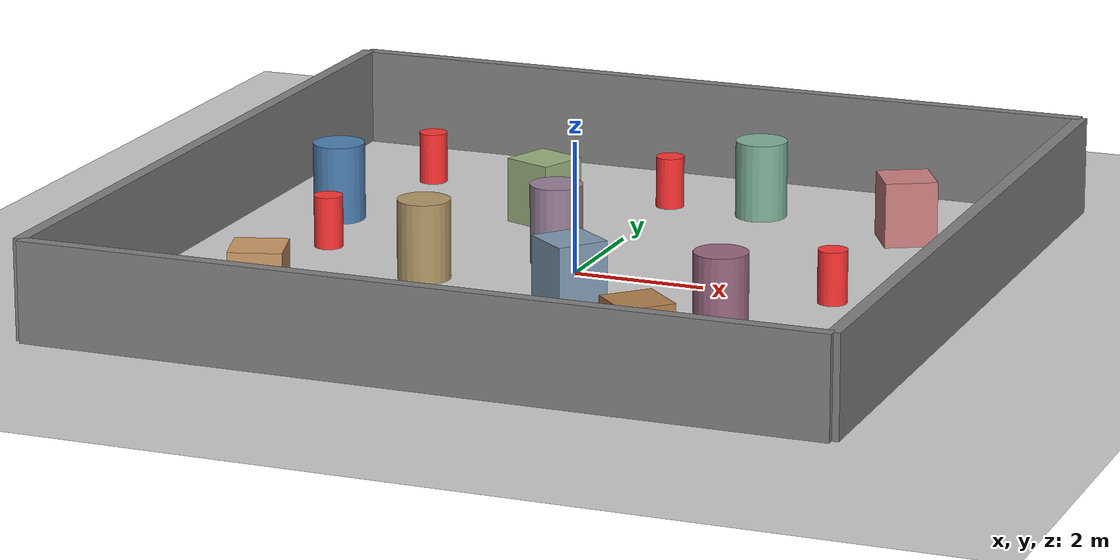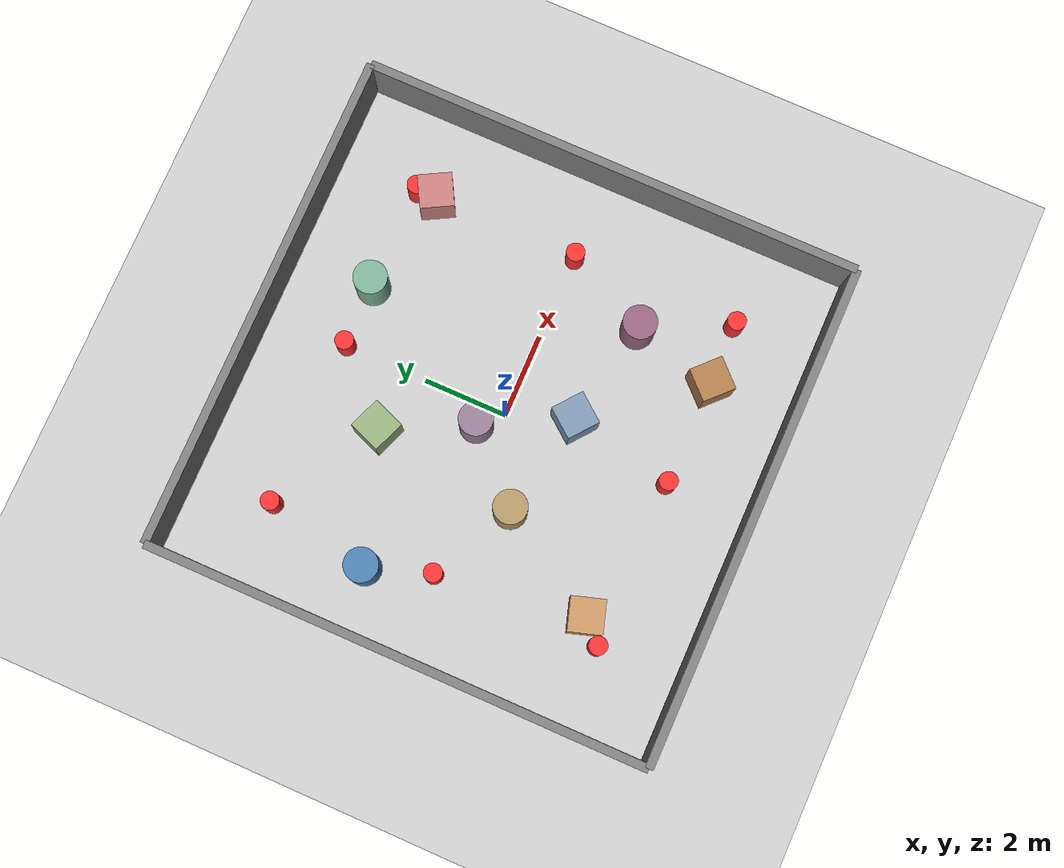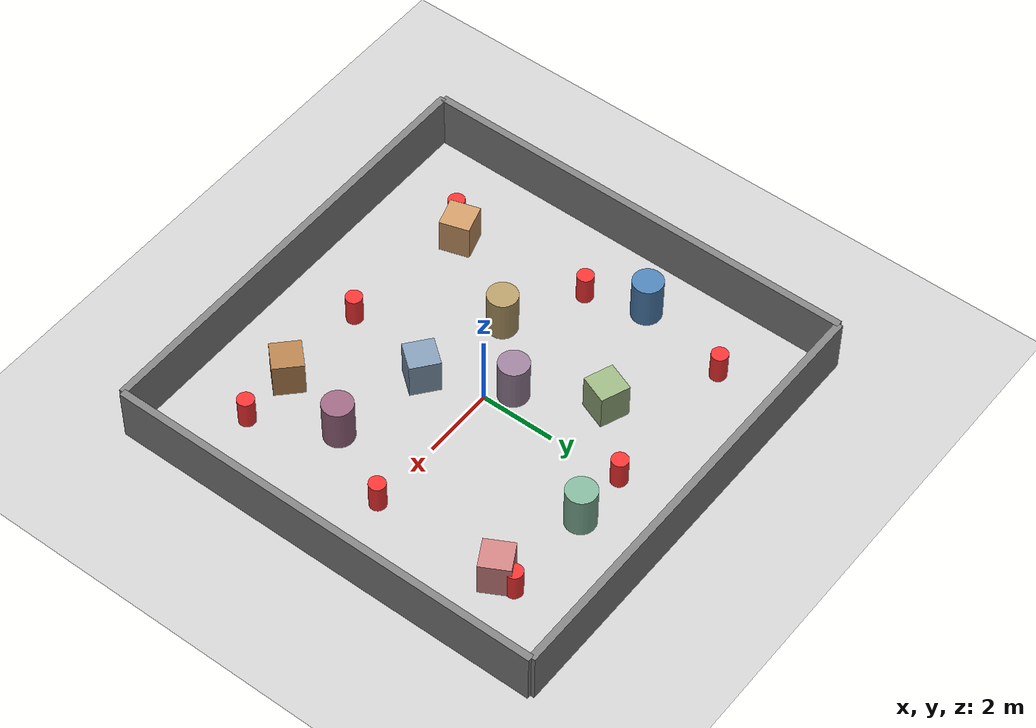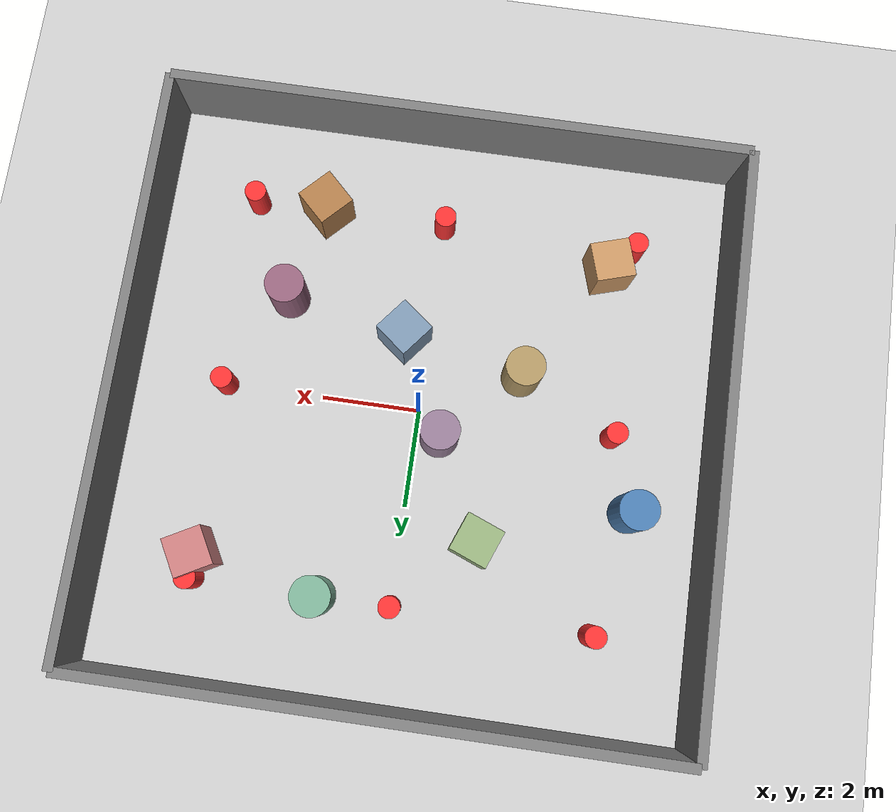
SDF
<?xml version="1.0" ?>
<sdf version="1.6">
<world name="warehouse_random">
  <plugin name='gazebo_ros_state' filename='libgazebo_ros_state.so'>
    <ros>
      <argument>model_states:=model_states_demo</argument>
    </ros>
    <update_rate>1.0</update_rate>
  </plugin>

  <include>
    <uri>model://sun</uri>
  </include>
  <include>
    <uri>model://ground_plane</uri>
  </include>

  <!-- Boundary walls: 12m x 12m warehouse (±6m) -->
  <model name="b_north">
    <static>true</static>
    <pose>0.0 6.0 0.75 0 0 0</pose>
    <link name="link">
      <collision name="collision"><geometry><box><size>12.0 0.2 1.5</size></box></geometry></collision>
      <visual name="visual">
        <geometry><box><size>12.0 0.2 1.5</size></box></geometry>
        <material><ambient>0.5 0.5 0.5 1</ambient></material>
      </visual>
    </link>
  </model>

  <model name="b_south">
    <static>true</static>
    <pose>0.0 -6.0 0.75 0 0 0</pose>
    <link name="link">
      <collision name="collision"><geometry><box><size>12.0 0.2 1.5</size></box></geometry></collision>
      <visual name="visual">
        <geometry><box><size>12.0 0.2 1.5</size></box></geometry>
        <material><ambient>0.5 0.5 0.5 1</ambient></material>
      </visual>
    </link>
  </model>

  <model name="b_east">
    <static>true</static>
    <pose>6.0 0.0 0.75 0 0 0</pose>
    <link name="link">
      <collision name="collision"><geometry><box><size>0.2 12.0 1.5</size></box></geometry></collision>
      <visual name="visual">
        <geometry><box><size>0.2 12.0 1.5</size></box></geometry>
        <material><ambient>0.5 0.5 0.5 1</ambient></material>
      </visual>
    </link>
  </model>

  <model name="b_west">
    <static>true</static>
    <pose>-6.0 0.0 0.75 0 0 0</pose>
    <link name="link">
      <collision name="collision"><geometry><box><size>0.2 12.0 1.5</size></box></geometry></collision>
      <visual name="visual">
        <geometry><box><size>0.2 12.0 1.5</size></box></geometry>
        <material><ambient>0.5 0.5 0.5 1</ambient></material>
      </visual>
    </link>
  </model>

  <!-- Random static obstacles: boxes and cylinders simulating warehouse items -->
  <!-- Layout: 随机分布 10 个静态障碍物，留出足够导航空间 -->

  <!-- Box obstacles (货箱) - 0.8m x 0.8m x 1.0m -->
  <model name="static_box_0">
    <static>true</static>
    <pose>-3.5 -3.5 0.5 0 0 0.3</pose>
    <link name="link">
      <collision name="collision"><geometry><box><size>0.8 0.8 1.0</size></box></geometry></collision>
      <visual name="visual">
        <geometry><box><size>0.8 0.8 1.0</size></box></geometry>
        <material><ambient>0.8 0.6 0.4 1</ambient></material>
      </visual>
    </link>
  </model>

  <model name="static_box_1">
    <static>true</static>
    <pose>2.5 -4.0 0.5 0 0 0.8</pose>
    <link name="link">
      <collision name="collision"><geometry><box><size>0.8 0.8 1.0</size></box></geometry></collision>
      <visual name="visual">
        <geometry><box><size>0.8 0.8 1.0</size></box></geometry>
        <material><ambient>0.7 0.5 0.3 1</ambient></material>
      </visual>
    </link>
  </model>

  <model name="static_box_2">
    <static>true</static>
    <pose>-1.5 2.5 0.5 0 0 1.2</pose>
    <link name="link">
      <collision name="collision"><geometry><box><size>0.8 0.8 1.0</size></box></geometry></collision>
      <visual name="visual">
        <geometry><box><size>0.8 0.8 1.0</size></box></geometry>
        <material><ambient>0.6 0.7 0.5 1</ambient></material>
      </visual>
    </link>
  </model>

  <model name="static_box_3">
    <static>true</static>
    <pose>4.0 3.5 0.5 0 0 0.5</pose>
    <link name="link">
      <collision name="collision"><geometry><box><size>0.8 0.8 1.0</size></box></geometry></collision>
      <visual name="visual">
        <geometry><box><size>0.8 0.8 1.0</size></box></geometry>
        <material><ambient>0.8 0.5 0.5 1</ambient></material>
      </visual>
    </link>
  </model>

  <model name="static_box_4">
    <static>true</static>
    <pose>0.5 -1.5 0.5 0 0 0.9</pose>
    <link name="link">
      <collision name="collision"><geometry><box><size>0.8 0.8 1.0</size></box></geometry></collision>
      <visual name="visual">
        <geometry><box><size>0.8 0.8 1.0</size></box></geometry>
        <material><ambient>0.5 0.6 0.7 1</ambient></material>
      </visual>
    </link>
  </model>

  <!-- Cylinder obstacles (圆柱货物) - radius 0.4m, height 1.2m -->
  <model name="static_cyl_0">
    <static>true</static>
    <pose>-4.5 1.5 0.6 0 0 0</pose>
    <link name="link">
      <collision name="collision"><geometry><cylinder><radius>0.4</radius><length>1.2</length></cylinder></geometry></collision>
      <visual name="visual">
        <geometry><cylinder><radius>0.4</radius><length>1.2</length></cylinder></geometry>
        <material><ambient>0.3 0.5 0.7 1</ambient></material>
      </visual>
    </link>
  </model>

  <model name="static_cyl_1">
    <static>true</static>
    <pose>3.0 -2.0 0.6 0 0 0</pose>
    <link name="link">
      <collision name="collision"><geometry><cylinder><radius>0.4</radius><length>1.2</length></cylinder></geometry></collision>
      <visual name="visual">
        <geometry><cylinder><radius>0.4</radius><length>1.2</length></cylinder></geometry>
        <material><ambient>0.6 0.4 0.5 1</ambient></material>
      </visual>
    </link>
  </model>

  <model name="static_cyl_2">
    <static>true</static>
    <pose>-2.0 -1.0 0.6 0 0 0</pose>
    <link name="link">
      <collision name="collision"><geometry><cylinder><radius>0.4</radius><length>1.2</length></cylinder></geometry></collision>
      <visual name="visual">
        <geometry><cylinder><radius>0.4</radius><length>1.2</length></cylinder></geometry>
        <material><ambient>0.7 0.6 0.4 1</ambient></material>
      </visual>
    </link>
  </model>

  <model name="static_cyl_3">
    <static>true</static>
    <pose>1.5 4.0 0.6 0 0 0</pose>
    <link name="link">
      <collision name="collision"><geometry><cylinder><radius>0.4</radius><length>1.2</length></cylinder></geometry></collision>
      <visual name="visual">
        <geometry><cylinder><radius>0.4</radius><length>1.2</length></cylinder></geometry>
        <material><ambient>0.5 0.7 0.6 1</ambient></material>
      </visual>
    </link>
  </model>

  <model name="static_cyl_4">
    <static>true</static>
    <pose>-0.5 0.5 0.6 0 0 0</pose>
    <link name="link">
      <collision name="collision"><geometry><cylinder><radius>0.4</radius><length>1.2</length></cylinder></geometry></collision>
      <visual name="visual">
        <geometry><cylinder><radius>0.4</radius><length>1.2</length></cylinder></geometry>
        <material><ambient>0.6 0.5 0.6 1</ambient></material>
      </visual>
    </link>
  </model>

  <!-- Dynamic obstacles (8 cylinders, moved by obstacle_mover node) -->
  <model name="dyn_obs_0">
    <static>true</static>
    <pose>-4.0 -4.0 0.4 0 0 0</pose>
    <link name="link">
      <collision name="collision"><geometry><cylinder><radius>0.22</radius><length>0.8</length></cylinder></geometry></collision>
      <visual name="visual">
        <geometry><cylinder><radius>0.22</radius><length>0.8</length></cylinder></geometry>
        <material><ambient>1.0 0.2 0.2 1</ambient></material>
      </visual>
    </link>
  </model>

  <model name="dyn_obs_1">
    <static>true</static>
    <pose>-4.0 4.0 0.4 0 0 0</pose>
    <link name="link">
      <collision name="collision"><geometry><cylinder><radius>0.22</radius><length>0.8</length></cylinder></geometry></collision>
      <visual name="visual">
        <geometry><cylinder><radius>0.22</radius><length>0.8</length></cylinder></geometry>
        <material><ambient>1.0 0.2 0.2 1</ambient></material>
      </visual>
    </link>
  </model>

  <model name="dyn_obs_2">
    <static>true</static>
    <pose>4.0 -4.0 0.4 0 0 0</pose>
    <link name="link">
      <collision name="collision"><geometry><cylinder><radius>0.22</radius><length>0.8</length></cylinder></geometry></collision>
      <visual name="visual">
        <geometry><cylinder><radius>0.22</radius><length>0.8</length></cylinder></geometry>
        <material><ambient>1.0 0.2 0.2 1</ambient></material>
      </visual>
    </link>
  </model>

  <model name="dyn_obs_3">
    <static>true</static>
    <pose>4.0 4.0 0.4 0 0 0</pose>
    <link name="link">
      <collision name="collision"><geometry><cylinder><radius>0.22</radius><length>0.8</length></cylinder></geometry></collision>
      <visual name="visual">
        <geometry><cylinder><radius>0.22</radius><length>0.8</length></cylinder></geometry>
        <material><ambient>1.0 0.2 0.2 1</ambient></material>
      </visual>
    </link>
  </model>

  <model name="dyn_obs_4">
    <static>true</static>
    <pose>-4.0 0.0 0.4 0 0 0</pose>
    <link name="link">
      <collision name="collision"><geometry><cylinder><radius>0.22</radius><length>0.8</length></cylinder></geometry></collision>
      <visual name="visual">
        <geometry><cylinder><radius>0.22</radius><length>0.8</length></cylinder></geometry>
        <material><ambient>1.0 0.2 0.2 1</ambient></material>
      </visual>
    </link>
  </model>

  <model name="dyn_obs_5">
    <static>true</static>
    <pose>4.0 0.0 0.4 0 0 0</pose>
    <link name="link">
      <collision name="collision"><geometry><cylinder><radius>0.22</radius><length>0.8</length></cylinder></geometry></collision>
      <visual name="visual">
        <geometry><cylinder><radius>0.22</radius><length>0.8</length></cylinder></geometry>
        <material><ambient>1.0 0.2 0.2 1</ambient></material>
      </visual>
    </link>
  </model>

  <model name="dyn_obs_6">
    <static>true</static>
    <pose>0.0 -4.0 0.4 0 0 0</pose>
    <link name="link">
      <collision name="collision"><geometry><cylinder><radius>0.22</radius><length>0.8</length></cylinder></geometry></collision>
      <visual name="visual">
        <geometry><cylinder><radius>0.22</radius><length>0.8</length></cylinder></geometry>
        <material><ambient>1.0 0.2 0.2 1</ambient></material>
      </visual>
    </link>
  </model>

  <model name="dyn_obs_7">
    <static>true</static>
    <pose>0.0 4.0 0.4 0 0 0</pose>
    <link name="link">
      <collision name="collision"><geometry><cylinder><radius>0.22</radius><length>0.8</length></cylinder></geometry></collision>
      <visual name="visual">
        <geometry><cylinder><radius>0.22</radius><length>0.8</length></cylinder></geometry>
        <material><ambient>1.0 0.2 0.2 1</ambient></material>
      </visual>
    </link>
  </model>

</world>
</sdf>
